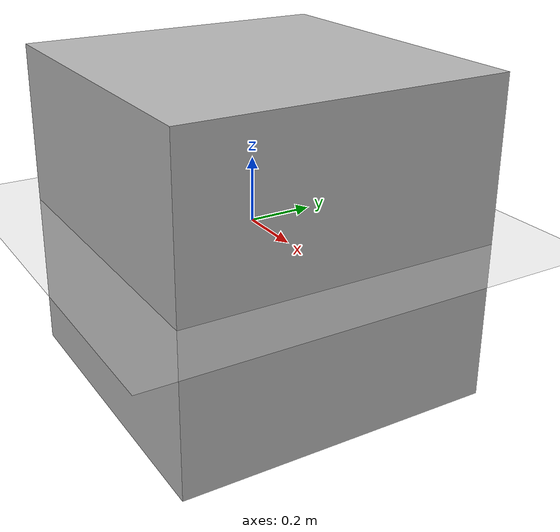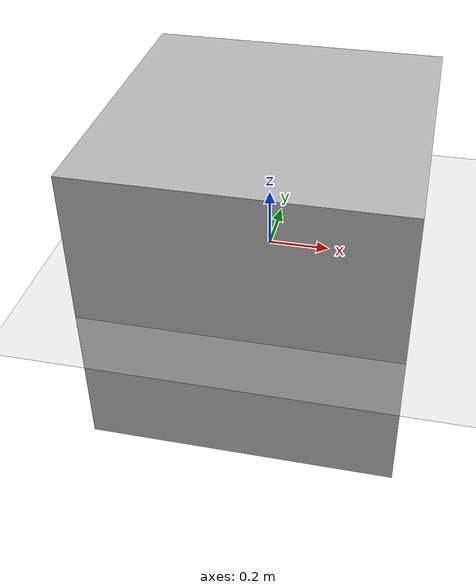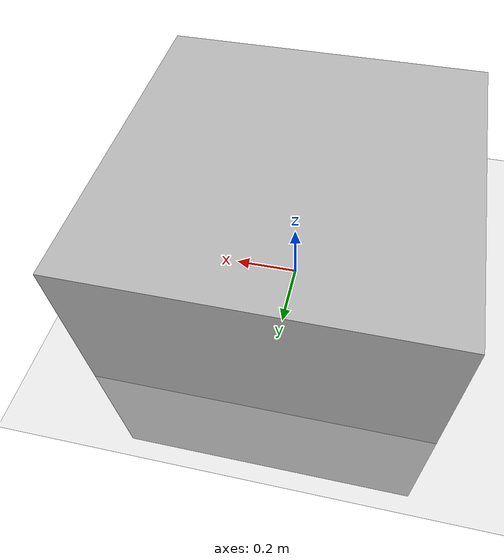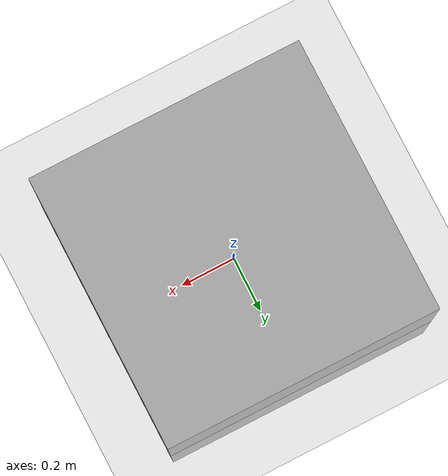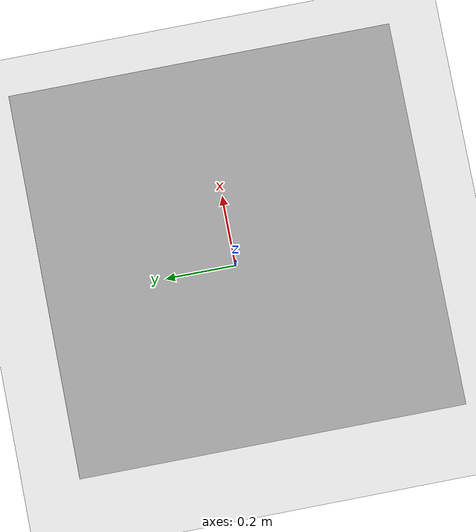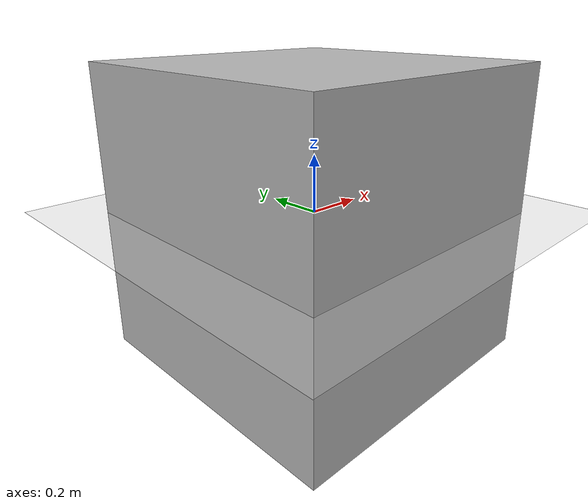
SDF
<sdf version="1.8">
    <world name="world_demo">
        <!-- Provides physics engine for interactions with objects -->
        <physics name="1ms" type="ode">
            <max_step_size>0.003</max_step_size>
            <real_time_update_rate>1000.0</real_time_update_rate>
            <real_time_factor>1.0</real_time_factor>
        </physics>
        <!-- Provides the necessary Gazebo plugins for the simulation -->
        <plugin filename="gz-sim-physics-system"
            name="gz::sim::systems::Physics" />
        <plugin filename="gz-sim-user-commands-system"
            name="gz::sim::systems::UserCommands" />
        <plugin filename="gz-sim-scene-broadcaster-system"
            name="gz::sim::systems::SceneBroadcaster" />

        <!-- Provides the necessary sensor plugins for the simulation -->
        <plugin filename="gz-sim-sensors-system"
            name="gz::sim::systems::Sensors">
            <render_engine>ogre2</render_engine>
        </plugin>
        <plugin filename="gz-sim-imu-system"
            name="gz::sim::systems::Imu" />

        <!-- Configures the graphical user interface for Gazebo -->
        <gui fullscreen="0">
            <plugin filename="MinimalScene" name="3D View">
                <gz-gui>
                    <title>3D View</title>
                    <property type="bool" key="showTitleBar">false</property>
                    <property type="string" key="state">docked</property>
                </gz-gui>

                <engine>ogre2</engine>
                <scene>scene</scene>
                <ambient_light>0.4 0.4 0.4</ambient_light>
                <background_color>0.8 0.8 0.8</background_color>
                <camera_pose>0 0 8 0 1.5708 0</camera_pose>
                <camera_clip>
                    <near>0.25</near>
                    <far>25000</far>
                </camera_clip>
            </plugin>

            <!-- Scene manager plugin -->
            <plugin filename="GzSceneManager" name="Scene Manager">
                <gz-gui>
                    <property key="resizable" type="bool">false</property>
                    <property key="width" type="double">5</property>
                    <property key="height" type="double">5</property>
                    <property key="state" type="string">floating</property>
                    <property key="showTitleBar" type="bool">false</property>
                </gz-gui>
            </plugin>

            <!-- World control buttons-->
            <plugin filename="WorldControl" name="World control">
                <gz-gui>
                    <title>World control</title>
                    <property type="bool" key="showTitleBar">false</property>
                    <property type="bool" key="resizable">false</property>
                    <property type="double" key="height">72</property>
                    <property type="double" key="width">121</property>
                    <property type="double" key="z">1</property>

                    <property type="string" key="state">floating</property>
                    <anchors target="3D View">
                        <line own="left" target="left" />
                        <line own="bottom" target="bottom" />
                    </anchors>
                </gz-gui>

                <play_pause>true</play_pause>
                <step>true</step>
                <start_paused>true</start_paused>
                <service>/world/world_demo/control</service>
                <stats_topic>/world/world_demo/stats</stats_topic>
            </plugin>

            <!-- World statistics -->
            <plugin filename="WorldStats" name="World stats">
                <gz-gui>
                    <title>World stats</title>
                    <property type="bool" key="showTitleBar">false</property>
                    <property type="bool" key="resizable">false</property>
                    <property type="double" key="height">110</property>
                    <property type="double" key="width">290</property>
                    <property type="double" key="z">1</property>

                    <property type="string" key="state">floating</property>
                    <anchors target="3D View">
                        <line own="right" target="right" />
                        <line own="bottom" target="bottom" />
                    </anchors>
                </gz-gui>

                <sim_time>true</sim_time>
                <real_time>true</real_time>
                <real_time_factor>true</real_time_factor>
                <iterations>true</iterations>
                <topic>/world/world_demo/stats</topic>
            </plugin>

            <!-- Interactive view control plugin -->
            <plugin filename="InteractiveViewControl" name="Interactive view control">
                <gz-gui>
                    <property key="resizable" type="bool">false</property>
                    <property key="width" type="double">5</property>
                    <property key="height" type="double">5</property>
                    <property key="state" type="string">floating</property>
                    <property key="showTitleBar" type="bool">false</property>
                </gz-gui>
            </plugin>

            <!-- Entitiy selection plugin -->
            <plugin filename="SelectEntities" name="Select Entities">
                <gz-gui>
                    <anchors target="Interactive view control">
                        <line own="right" target="left" />
                        <line own="top" target="top" />
                    </anchors>
                    <property key="resizable" type="bool">false</property>
                    <property key="width" type="double">5</property>
                    <property key="height" type="double">5</property>
                    <property key="state" type="string">floating</property>
                    <property key="showTitleBar" type="bool">false</property>
                </gz-gui>
            </plugin>
        </gui>

        <!-- Provide directional light for the simulation -->
        <light type="directional" name="sun">
            <cast_shadows>true</cast_shadows>
            <pose>0 0 10 0 0 0</pose>
            <diffuse>0.8 0.8 0.8 1</diffuse>
            <specular>0.2 0.2 0.2 1</specular>
            <attenuation>
                <range>1000</range>
                <constant>0.9</constant>
                <linear>0.01</linear>
                <quadratic>0.001</quadratic>
            </attenuation>
            <direction>-0.5 0.1 -0.9</direction>
        </light>

        <!-- Provides the floor for the robot -->
        <include>
            <uri>https://fuel.gazebosim.org/1.0/OpenRobotics/models/Ground Plane</uri>
        </include>

        <!-- These walls establish the location of the simulation based on the project -->
        <!-- Left Wall -->
        <model name="wall_1">
        <static>true</static>
            <pose></pose>
            <link name="link">
                <collision name="collision">
                    <geometry>
                        <box>
                            <size></size>
                        </box>
                    </geometry>
                </collision>
                <visual name="visual">
                    <geometry>
                        <box>
                            <size></size>
                        </box>
                    </geometry>
                </visual>
            </link>
        </model>

        <!-- Right Wall -->
        <model name="wall_2">
        <static>true</static>
            <pose></pose>
            <link name="link">
                <collision name="collision">
                    <geometry>
                        <box>
                            <size></size>
                        </box>
                    </geometry>
                </collision>
                <visual name="visual">
                    <geometry>
                        <box>
                            <size></size>
                        </box>
                    </geometry>
                </visual>
            </link>
        </model>

        <!-- Top Wall -->
        <model name="wall_3">
        <static>true</static>
            <pose></pose>
            <link name="link">
                <collision name="collision">
                    <geometry>
                        <box>
                            <size></size>
                        </box>
                    </geometry>
                </collision>
                <visual name="visual">
                    <geometry>
                        <box>
                            <size></size>
                        </box>
                    </geometry>
                </visual>
            </link>
        </model>

        <!-- Bottom Wall -->
        <model name="wall_4">
        <static>true</static>
            <pose></pose>
            <link name="link">
                <collision name="collision">
                    <geometry>
                        <box>
                            <size></size>
                        </box>
                    </geometry>
                </collision>
                <visual name="visual">
                    <geometry>
                        <box>
                            <size></size>
                        </box>
                    </geometry>
                </visual>
            </link>
        </model>

        <!-- Box 1-->
        <model name="wall_5">
        <static>true</static>
            <pose></pose>
            <link name="link">
                <collision name="collision">
                    <geometry>
                        <box>
                            <size></size>
                        </box>
                    </geometry>
                </collision>
                <visual name="visual">
                    <geometry>
                        <box>
                            <size></size>
                        </box>
                    </geometry>
                </visual>
            </link>
        </model>

        <!-- Box 2-->
        <model name="wall_6">
        <static>true</static>
            <pose></pose>
            <link name="link">
                <collision name="collision">
                    <geometry>
                        <box>
                            <size></size>
                        </box>
                    </geometry>
                </collision>
                <visual name="visual">
                    <geometry>
                        <box>
                            <size></size>
                        </box>
                    </geometry>
                </visual>
            </link>
        </model>

        <!-- Box 3-->
        <model name="wall_7">
        <static>true</static>
            <pose></pose>
            <link name="link">
                <collision name="collision">
                    <geometry>
                        <box>
                            <size></size>
                        </box>
                    </geometry>
                </collision>
                <visual name="visual">
                    <geometry>
                        <box>
                            <size></size>
                        </box>
                    </geometry>
                </visual>
            </link>
        </model>
    </world>
</sdf>
